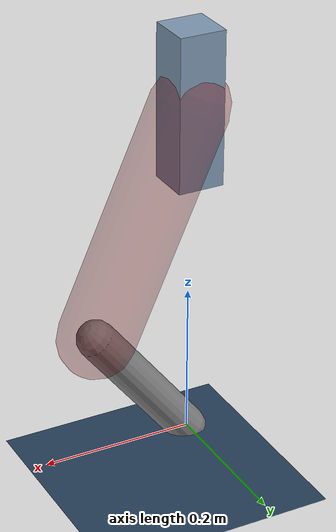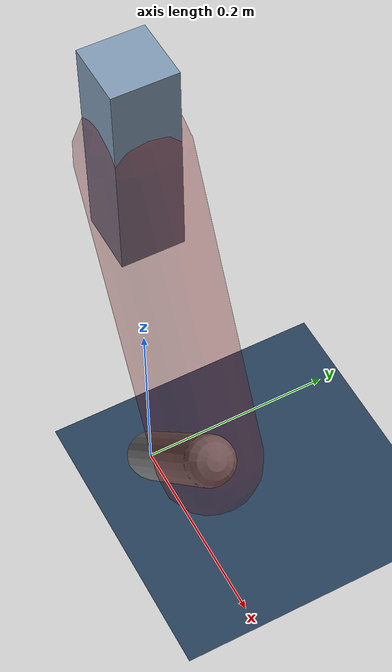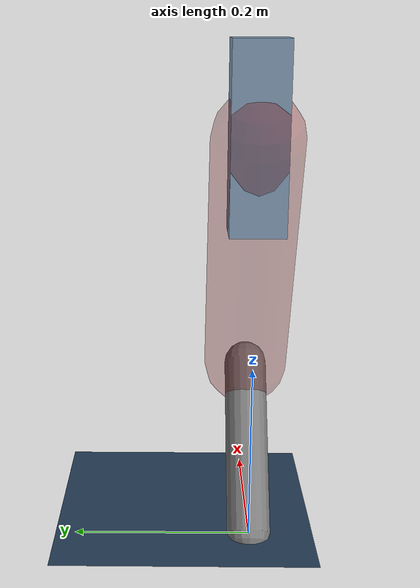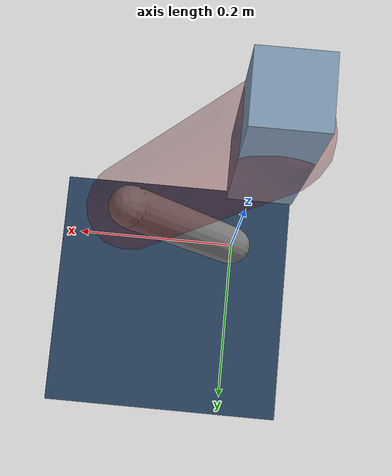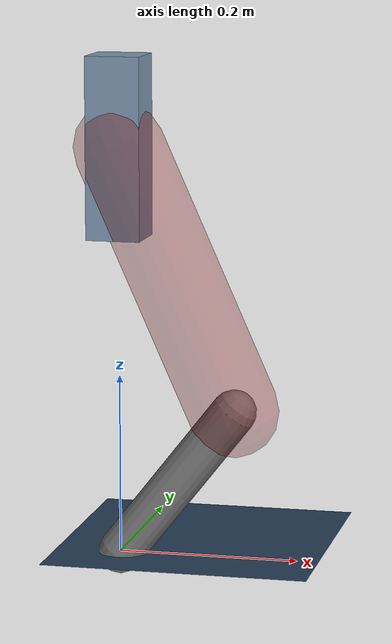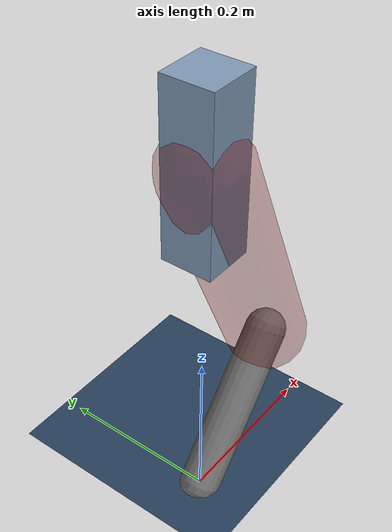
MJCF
<mujoco model="Hopper2D">
	<compiler inertiafromgeom="true" angle="radian" />
	<option timestep="0.001" integrator="implicit" cone="elliptic" solver="Newton" tolerance="1e-10" />

	<default>
		<geom contype="1" conaffinity="1" condim="3" friction="2 0.005 0.0001" solref="0.005 1" />
		<joint limited="true" damping="0.1" />
	</default>

	<asset>
		<texture name="skybox" type="skybox" builtin="gradient" rgb1=".4 .6 .8" rgb2="0 0 0" width="800" height="800" />
		<texture name="grid" type="2d" builtin="checker" rgb1=".1 .2 .3" rgb2=".2 .3 .4" width="300" height="300" mark="edge" markrgb=".2 .3 .4" />
		<material name="ground" texture="grid" texrepeat="1 1" texuniform="true" reflectance="0.1" />
		<material name="leg" rgba="0.5 0.6 0.7 1" />
	</asset>

	<worldbody>

		<geom name="floor" type="plane" size="5 5 0.25" material="ground" />

		<light directional="false" diffuse="0.8 0.8 0.8" specular="0.3 0.3 0.3" pos="0 0 2" dir="0 0 -1" />
		<light mode="targetbodycom" target="base" directional="false" diffuse="0.8 0.8 0.8" specular="0.3 0.3 0.3" pos="0 0 2" dir="0 0 -1" />

		<camera name="fixed" pos="0 -2 1" xyaxes="1 0 0 0 0 1" />
		<camera name="tracking" mode="trackcom" pos="0 -3 1" />

		<body name="root" pos="0 0 0.45425401895843137">
			<joint name="slide_x" type="slide" axis="1 0 0" range="-100 100" />
			<joint name="slide_z" type="slide" axis="0 0 1" range="0 10" />

			<body name="base" pos="0 0 0">
				<geom name="torso" type="box" size="0.03 0.03 0.1" mass="2.4770000000000003" material="leg" />

				<body name="link1" pos="0 0 0" euler="0 1.1518105783853168 0">
					<joint type="hinge" axis="0 -1 0" pos="0 0 0" name="hinge1" limited="true" range="-3.14 3.14" stiffness="0" damping="0.1" />
					<geom name="thigh" type="capsule" fromto="0 0 0 0.31683910200787857 0 0" size="0.05" rgba="0.5 0 0 0.3" mass="1.0345655754212721" />

					<body name="link2" pos="0.31683910200787857 0 0" euler="0 1.0826959379019385 0">
						<joint type="hinge" axis="0 -1 0" pos="0 0 0" name="hinge2" limited="true" range="-3.14 3.14" stiffness="0" damping="0.1" />
						<geom name="shank" type="capsule" fromto="0 0 0 0.2092399862873898 0 0" size="0.025" mass="0.40869198902991183" />

					</body>
				</body>
			</body>
		</body>
	</worldbody>

	<actuator>
		<motor name="torque1" joint="hinge1" ctrlrange="-83.11714399965082 83.11714399965082" ctrllimited="true" gear="1" />
		<motor name="torque2" joint="hinge2" ctrlrange="-45.74224505681974 45.74224505681974" ctrllimited="true" gear="1" />
	</actuator>
</mujoco>
